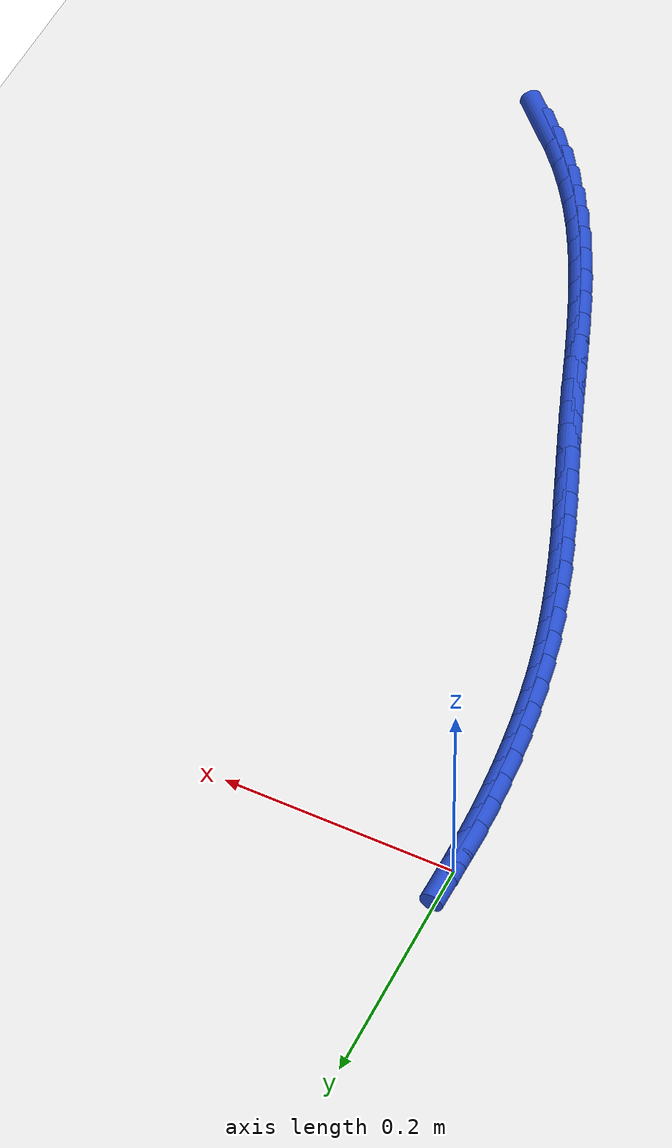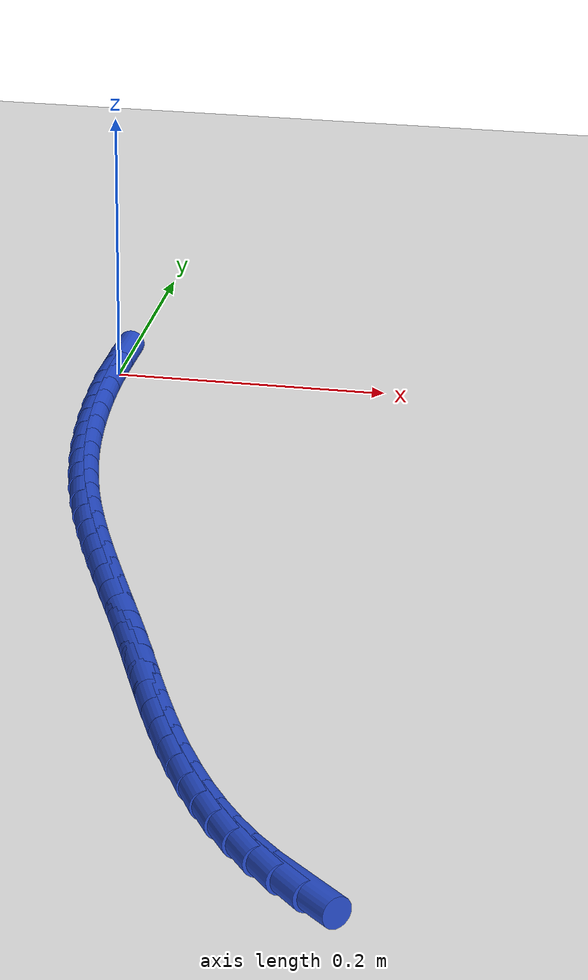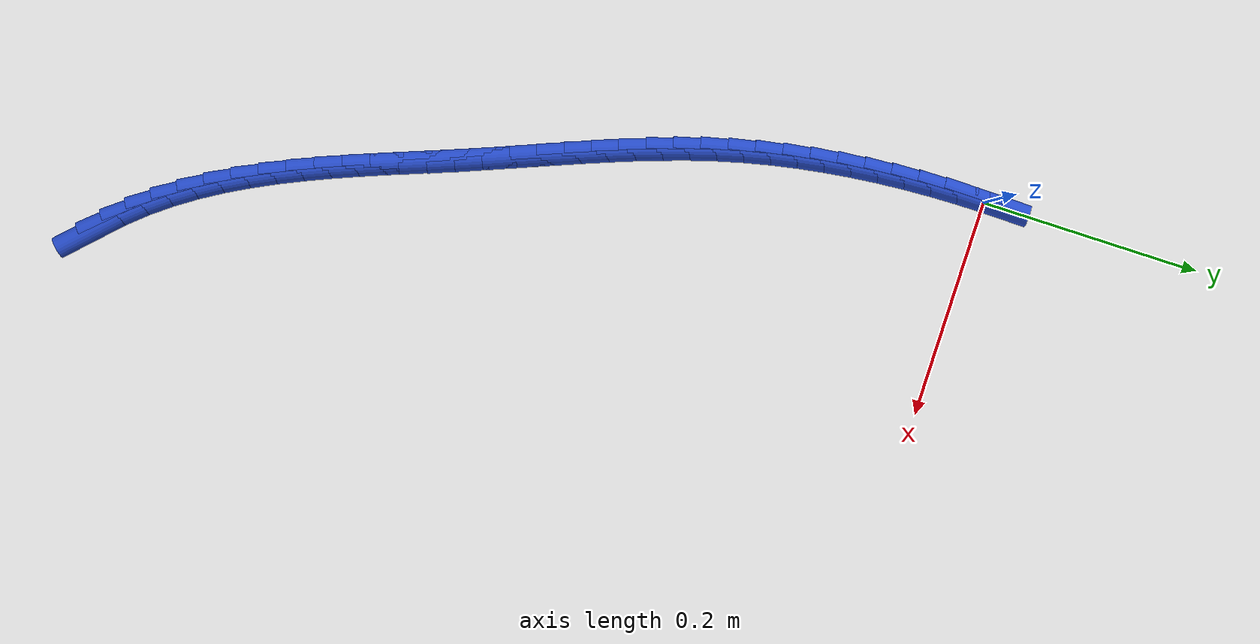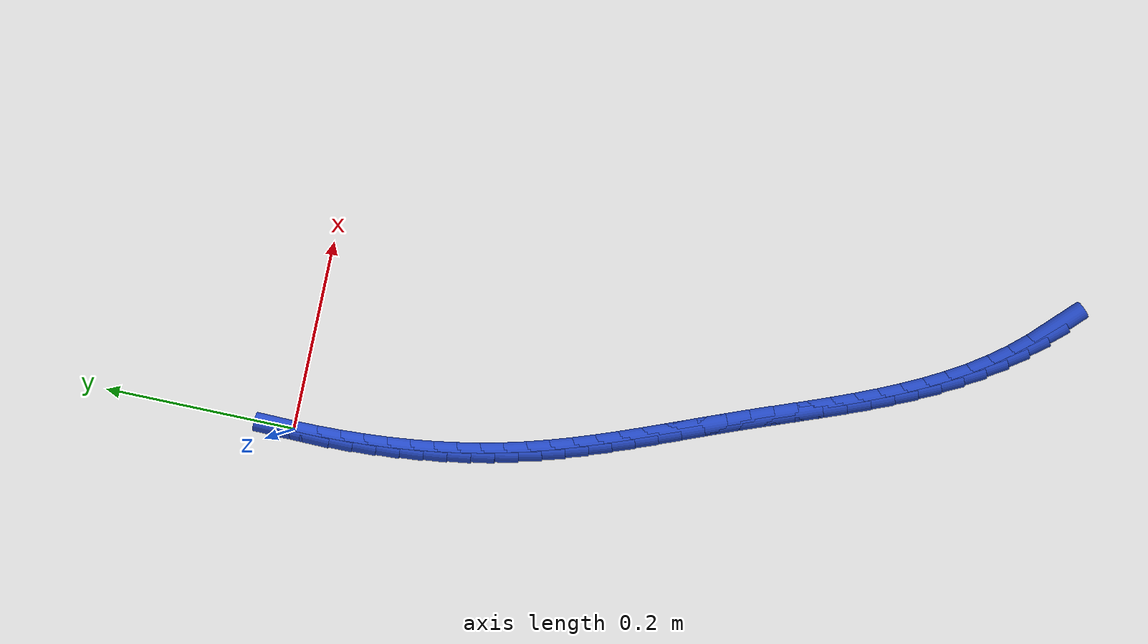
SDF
<sdf version="1.6">
 <world name="default">
  <model name="ground_plane">
   <static>1</static>
   <link name="link">
    <collision name="collision">
     <geometry><plane><normal>0 0 1</normal><size>100 100</size></plane></geometry>
     <surface><friction><ode><mu>100</mu><mu2>50</mu2></ode></friction></surface>
    </collision>
    <visual name="visual">
     <cast_shadows>0</cast_shadows>
     <geometry><plane><normal>0 0 1</normal><size>100 100</size></plane></geometry>
     <material>
      <script><uri>file://media/materials/scripts/gazebo.material</uri><name>Gazebo/WhiteGlow</name></script>
     </material>
    </visual>
   </link>
  </model>
  <model name="line">
   <link name="link_0">
    <pose>1.1709383462843448e-17 8.326672684688674e-17 0.01 0 1.57 1.5553047397902697</pose>
    <collision name="collision">
     <geometry><cylinder><radius>0.01</radius><length>0.08</length></cylinder></geometry>
    </collision>
    <visual name="visual">
     <material>
      <script><name>Gazebo/Blue</name><uri>file://media/materials/scripts/gazebo.material</uri></script>
     </material>
     <geometry><cylinder><radius>0.01</radius><length>0.08</length></cylinder></geometry>
    </visual>
   </link>
   <link name="link_237">
    <pose>0.2669774351682183 -0.7471383520197358 0.01 0 1.57 -0.7804155482801699</pose>
    <collision name="collision">
     <geometry><cylinder><radius>0.01</radius><length>0.08</length></cylinder></geometry>
    </collision>
    <visual name="visual">
     <material>
      <script><name>Gazebo/Blue</name><uri>file://media/materials/scripts/gazebo.material</uri></script>
     </material>
     <geometry><cylinder><radius>0.01</radius><length>0.08</length></cylinder></geometry>
    </visual>
   </link>
   <link name="link_238">
    <pose>0.24999599239306802 -0.7303252956205336 0.01 0 1.57 -0.8497371506162074</pose>
    <collision name="collision">
     <geometry><cylinder><radius>0.01</radius><length>0.08</length></cylinder></geometry>
    </collision>
    <visual name="visual">
     <material>
      <script><name>Gazebo/Blue</name><uri>file://media/materials/scripts/gazebo.material</uri></script>
     </material>
     <geometry><cylinder><radius>0.01</radius><length>0.08</length></cylinder></geometry>
    </visual>
   </link>
   <link name="link_239">
    <pose>0.23427046721917677 -0.7124339026118526 0.01 0 1.57 -0.9156264126686907</pose>
    <collision name="collision">
     <geometry><cylinder><radius>0.01</radius><length>0.08</length></cylinder></geometry>
    </collision>
    <visual name="visual">
     <material>
      <script><name>Gazebo/Blue</name><uri>file://media/materials/scripts/gazebo.material</uri></script>
     </material>
     <geometry><cylinder><radius>0.01</radius><length>0.08</length></cylinder></geometry>
    </visual>
   </link>
   <link name="link_240">
    <pose>0.21974109338683462 -0.6935251556354792 0.01 0 1.57 -0.9747074095713762</pose>
    <collision name="collision">
     <geometry><cylinder><radius>0.01</radius><length>0.08</length></cylinder></geometry>
    </collision>
    <visual name="visual">
     <material>
      <script><name>Gazebo/Blue</name><uri>file://media/materials/scripts/gazebo.material</uri></script>
     </material>
     <geometry><cylinder><radius>0.01</radius><length>0.08</length></cylinder></geometry>
    </visual>
   </link>
   <link name="link_241">
    <pose>0.20629307793230992 -0.6737023253712655 0.01 0 1.57 -1.0267745487455127</pose>
    <collision name="collision">
     <geometry><cylinder><radius>0.01</radius><length>0.08</length></cylinder></geometry>
    </collision>
    <visual name="visual">
     <material>
      <script><name>Gazebo/Blue</name><uri>file://media/materials/scripts/gazebo.material</uri></script>
     </material>
     <geometry><cylinder><radius>0.01</radius><length>0.08</length></cylinder></geometry>
    </visual>
   </link>
   <link name="link_242">
    <pose>0.19381159968897815 -0.65306870417299 0.01 0 1.57 -1.0718414684116215</pose>
    <collision name="collision">
     <geometry><cylinder><radius>0.01</radius><length>0.08</length></cylinder></geometry>
    </collision>
    <visual name="visual">
     <material>
      <script><name>Gazebo/Blue</name><uri>file://media/materials/scripts/gazebo.material</uri></script>
     </material>
     <geometry><cylinder><radius>0.01</radius><length>0.08</length></cylinder></geometry>
    </visual>
   </link>
   <link name="link_243">
    <pose>0.18218183749021666 -0.6317275843944349 0.01 0 1.57 -1.1100618368110649</pose>
    <collision name="collision">
     <geometry><cylinder><radius>0.01</radius><length>0.08</length></cylinder></geometry>
    </collision>
    <visual name="visual">
     <material>
      <script><name>Gazebo/Blue</name><uri>file://media/materials/scripts/gazebo.material</uri></script>
     </material>
     <geometry><cylinder><radius>0.01</radius><length>0.08</length></cylinder></geometry>
    </visual>
   </link>
   <link name="link_244">
    <pose>0.17128897016940098 -0.6097822583893788 0.01 0 1.57 -1.1416625565365328</pose>
    <collision name="collision">
     <geometry><cylinder><radius>0.01</radius><length>0.08</length></cylinder></geometry>
    </collision>
    <visual name="visual">
     <material>
      <script><name>Gazebo/Blue</name><uri>file://media/materials/scripts/gazebo.material</uri></script>
     </material>
     <geometry><cylinder><radius>0.01</radius><length>0.08</length></cylinder></geometry>
    </visual>
   </link>
   <link name="link_245">
    <pose>0.16101817655990816 -0.5873360185116033 0.01 0 1.57 -1.166891850198696</pose>
    <collision name="collision">
     <geometry><cylinder><radius>0.01</radius><length>0.08</length></cylinder></geometry>
    </collision>
    <visual name="visual">
     <material>
      <script><name>Gazebo/Blue</name><uri>file://media/materials/scripts/gazebo.material</uri></script>
     </material>
     <geometry><cylinder><radius>0.01</radius><length>0.08</length></cylinder></geometry>
    </visual>
   </link>
   <link name="link_246">
    <pose>0.15125463549511436 -0.5644921571148885 0.01 0 1.57 -1.1859817590981456</pose>
    <collision name="collision">
     <geometry><cylinder><radius>0.01</radius><length>0.08</length></cylinder></geometry>
    </collision>
    <visual name="visual">
     <material>
      <script><name>Gazebo/Blue</name><uri>file://media/materials/scripts/gazebo.material</uri></script>
     </material>
     <geometry><cylinder><radius>0.01</radius><length>0.08</length></cylinder></geometry>
    </visual>
   </link>
   <link name="link_247">
    <pose>0.1418835258083957 -0.541353966553014 0.01 0 1.57 -1.1991225440745545</pose>
    <collision name="collision">
     <geometry><cylinder><radius>0.01</radius><length>0.08</length></cylinder></geometry>
    </collision>
    <visual name="visual">
     <material>
      <script><name>Gazebo/Blue</name><uri>file://media/materials/scripts/gazebo.material</uri></script>
     </material>
     <geometry><cylinder><radius>0.01</radius><length>0.08</length></cylinder></geometry>
    </visual>
   </link>
   <link name="link_248">
    <pose>0.1327900263331291 -0.5180247391797616 0.01 0 1.57 -1.2064460215530726</pose>
    <collision name="collision">
     <geometry><cylinder><radius>0.01</radius><length>0.08</length></cylinder></geometry>
    </collision>
    <visual name="visual">
     <material>
      <script><name>Gazebo/Blue</name><uri>file://media/materials/scripts/gazebo.material</uri></script>
     </material>
     <geometry><cylinder><radius>0.01</radius><length>0.08</length></cylinder></geometry>
    </visual>
   </link>
   <link name="link_249">
    <pose>0.1238593159026904 -0.49460776734890977 0.01 0 1.57 -1.2080152499816255</pose>
    <collision name="collision">
     <geometry><cylinder><radius>0.01</radius><length>0.08</length></cylinder></geometry>
    </collision>
    <visual name="visual">
     <material>
      <script><name>Gazebo/Blue</name><uri>file://media/materials/scripts/gazebo.material</uri></script>
     </material>
     <geometry><cylinder><radius>0.01</radius><length>0.08</length></cylinder></geometry>
    </visual>
   </link>
   <link name="link_250">
    <pose>0.1149765733504566 -0.4712063434142409 0.01 0 1.57 -1.2038188091115087</pose>
    <collision name="collision">
     <geometry><cylinder><radius>0.01</radius><length>0.08</length></cylinder></geometry>
    </collision>
    <visual name="visual">
     <material>
      <script><name>Gazebo/Blue</name><uri>file://media/materials/scripts/gazebo.material</uri></script>
     </material>
     <geometry><cylinder><radius>0.01</radius><length>0.08</length></cylinder></geometry>
    </visual>
   </link>
   <link name="link_251">
    <pose>0.10602697943860252 -0.4479237583510779 0.01 0 1.57 -1.1956948619472392</pose>
    <collision name="collision">
     <geometry><cylinder><radius>0.01</radius><length>0.08</length></cylinder></geometry>
    </collision>
    <visual name="visual">
     <material>
      <script><name>Gazebo/Blue</name><uri>file://media/materials/scripts/gazebo.material</uri></script>
     </material>
     <geometry><cylinder><radius>0.01</radius><length>0.08</length></cylinder></geometry>
    </visual>
   </link>
   <link name="link_252">
    <pose>0.09693579151159203 -0.4248346615881874 0.01 0 1.57 -1.190476347139163</pose>
    <collision name="collision">
     <geometry><cylinder><radius>0.01</radius><length>0.08</length></cylinder></geometry>
    </collision>
    <visual name="visual">
     <material>
      <script><name>Gazebo/Blue</name><uri>file://media/materials/scripts/gazebo.material</uri></script>
     </material>
     <geometry><cylinder><radius>0.01</radius><length>0.08</length></cylinder></geometry>
    </visual>
   </link>
   <link name="link_253">
    <pose>0.0877714364210168 -0.4019113835473141 0.01 0 1.57 -1.189762766605556</pose>
    <collision name="collision">
     <geometry><cylinder><radius>0.01</radius><length>0.08</length></cylinder></geometry>
    </collision>
    <visual name="visual">
     <material>
      <script><name>Gazebo/Blue</name><uri>file://media/materials/scripts/gazebo.material</uri></script>
     </material>
     <geometry><cylinder><radius>0.01</radius><length>0.08</length></cylinder></geometry>
    </visual>
   </link>
   <link name="link_254">
    <pose>0.07863429848606908 -0.37910341559447946 0.01 0 1.57 -1.193619735925232</pose>
    <collision name="collision">
     <geometry><cylinder><radius>0.01</radius><length>0.08</length></cylinder></geometry>
    </collision>
    <visual name="visual">
     <material>
      <script><name>Gazebo/Blue</name><uri>file://media/materials/scripts/gazebo.material</uri></script>
     </material>
     <geometry><cylinder><radius>0.01</radius><length>0.08</length></cylinder></geometry>
    </visual>
   </link>
   <link name="link_255">
    <pose>0.06962476202593994 -0.3563602490957021 0.01 0 1.57 -1.202102706481773</pose>
    <collision name="collision">
     <geometry><cylinder><radius>0.01</radius><length>0.08</length></cylinder></geometry>
    </collision>
    <visual name="visual">
     <material>
      <script><name>Gazebo/Blue</name><uri>file://media/materials/scripts/gazebo.material</uri></script>
     </material>
     <geometry><cylinder><radius>0.01</radius><length>0.08</length></cylinder></geometry>
    </visual>
   </link>
   <link name="link_256">
    <pose>0.060843211359821625 -0.3336313754170036 0.01 0 1.57 -1.2152540202017972</pose>
    <collision name="collision">
     <geometry><cylinder><radius>0.01</radius><length>0.08</length></cylinder></geometry>
    </collision>
    <visual name="visual">
     <material>
      <script><name>Gazebo/Blue</name><uri>file://media/materials/scripts/gazebo.material</uri></script>
     </material>
     <geometry><cylinder><radius>0.01</radius><length>0.08</length></cylinder></geometry>
    </visual>
   </link>
   <link name="link_257">
    <pose>0.05239003080690548 -0.31086628592440335 0.01 0 1.57 -1.2330969220556964</pose>
    <collision name="collision">
     <geometry><cylinder><radius>0.01</radius><length>0.08</length></cylinder></geometry>
    </collision>
    <visual name="visual">
     <material>
      <script><name>Gazebo/Blue</name><uri>file://media/materials/scripts/gazebo.material</uri></script>
     </material>
     <geometry><cylinder><radius>0.01</radius><length>0.08</length></cylinder></geometry>
    </visual>
   </link>
   <link name="link_258">
    <pose>0.04436560468638291 -0.2880144719839206 0.01 0 1.57 -1.2556264900420535</pose>
    <collision name="collision">
     <geometry><cylinder><radius>0.01</radius><length>0.08</length></cylinder></geometry>
    </collision>
    <visual name="visual">
     <material>
      <script><name>Gazebo/Blue</name><uri>file://media/materials/scripts/gazebo.material</uri></script>
     </material>
     <geometry><cylinder><radius>0.01</radius><length>0.08</length></cylinder></geometry>
    </visual>
   </link>
   <link name="link_259">
    <pose>0.03687031731744609 -0.26502542496157694 0.01 0 1.57 -1.2827976946239998</pose>
    <collision name="collision">
     <geometry><cylinder><radius>0.01</radius><length>0.08</length></cylinder></geometry>
    </collision>
    <visual name="visual">
     <material>
      <script><name>Gazebo/Blue</name><uri>file://media/materials/scripts/gazebo.material</uri></script>
     </material>
     <geometry><cylinder><radius>0.01</radius><length>0.08</length></cylinder></geometry>
    </visual>
   </link>
   <link name="link_260">
    <pose>0.030004553019286208 -0.24184863622339103 0.01 0 1.57 -1.3143750596338484</pose>
    <collision name="collision">
     <geometry><cylinder><radius>0.01</radius><length>0.08</length></cylinder></geometry>
    </collision>
    <visual name="visual">
     <material>
      <script><name>Gazebo/Blue</name><uri>file://media/materials/scripts/gazebo.material</uri></script>
     </material>
     <geometry><cylinder><radius>0.01</radius><length>0.08</length></cylinder></geometry>
    </visual>
   </link>
   <link name="link_261">
    <pose>0.02386577176570875 -0.21843543658197628 0.01 0 1.57 -1.3473665932114194</pose>
    <collision name="collision">
     <geometry><cylinder><radius>0.01</radius><length>0.08</length></cylinder></geometry>
    </collision>
    <visual name="visual">
     <material>
      <script><name>Gazebo/Blue</name><uri>file://media/materials/scripts/gazebo.material</uri></script>
     </material>
     <geometry><cylinder><radius>0.01</radius><length>0.08</length></cylinder></geometry>
    </visual>
   </link>
   <link name="link_262">
    <pose>0.018489779158312965 -0.19477593815305275 0.01 0 1.57 -1.379030916763799</pose>
    <collision name="collision">
     <geometry><cylinder><radius>0.01</radius><length>0.08</length></cylinder></geometry>
    </collision>
    <visual name="visual">
     <material>
      <script><name>Gazebo/Blue</name><uri>file://media/materials/scripts/gazebo.material</uri></script>
     </material>
     <geometry><cylinder><radius>0.01</radius><length>0.08</length></cylinder></geometry>
    </visual>
   </link>
   <link name="link_263">
    <pose>0.013853688634820836 -0.170897171092639 0.01 0 1.57 -1.4092953698336395</pose>
    <collision name="collision">
     <geometry><cylinder><radius>0.01</radius><length>0.08</length></cylinder></geometry>
    </collision>
    <visual name="visual">
     <material>
      <script><name>Gazebo/Blue</name><uri>file://media/materials/scripts/gazebo.material</uri></script>
     </material>
     <geometry><cylinder><radius>0.01</radius><length>0.08</length></cylinder></geometry>
    </visual>
   </link>
   <link name="link_264">
    <pose>0.009932282179521692 -0.14682763206754318 0.01 0 1.57 -1.4382029570368422</pose>
    <collision name="collision">
     <geometry><cylinder><radius>0.01</radius><length>0.08</length></cylinder></geometry>
    </collision>
    <visual name="visual">
     <material>
      <script><name>Gazebo/Blue</name><uri>file://media/materials/scripts/gazebo.material</uri></script>
     </material>
     <geometry><cylinder><radius>0.01</radius><length>0.08</length></cylinder></geometry>
    </visual>
   </link>
   <link name="link_265">
    <pose>0.0067003417767053635 -0.12259581774457638 0.01 0 1.57 -1.4658019533256055</pose>
    <collision name="collision">
     <geometry><cylinder><radius>0.01</radius><length>0.08</length></cylinder></geometry>
    </collision>
    <visual name="visual">
     <material>
      <script><name>Gazebo/Blue</name><uri>file://media/materials/scripts/gazebo.material</uri></script>
     </material>
     <geometry><cylinder><radius>0.01</radius><length>0.08</length></cylinder></geometry>
    </visual>
   </link>
   <link name="link_266">
    <pose>0.004132649410661254 -0.0982302247905467 0.01 0 1.57 -1.4921443080786283</pose>
    <collision name="collision">
     <geometry><cylinder><radius>0.01</radius><length>0.08</length></cylinder></geometry>
    </collision>
    <visual name="visual">
     <material>
      <script><name>Gazebo/Blue</name><uri>file://media/materials/scripts/gazebo.material</uri></script>
     </material>
     <geometry><cylinder><radius>0.01</radius><length>0.08</length></cylinder></geometry>
    </visual>
   </link>
   <link name="link_267">
    <pose>0.002203987065679116 -0.07375934987226511 0.01 0 1.57 -1.5172842996792695</pose>
    <collision name="collision">
     <geometry><cylinder><radius>0.01</radius><length>0.08</length></cylinder></geometry>
    </collision>
    <visual name="visual">
     <material>
      <script><name>Gazebo/Blue</name><uri>file://media/materials/scripts/gazebo.material</uri></script>
     </material>
     <geometry><cylinder><radius>0.01</radius><length>0.08</length></cylinder></geometry>
    </visual>
   </link>
   <link name="link_268">
    <pose>0.0008891367260484622 -0.04921168965654053 0.01 0 1.57 -1.5412774252331503</pose>
    <collision name="collision">
     <geometry><cylinder><radius>0.01</radius><length>0.08</length></cylinder></geometry>
    </collision>
    <visual name="visual">
     <material>
      <script><name>Gazebo/Blue</name><uri>file://media/materials/scripts/gazebo.material</uri></script>
     </material>
     <geometry><cylinder><radius>0.01</radius><length>0.08</length></cylinder></geometry>
    </visual>
   </link>
   <link name="link_269">
    <pose>0.00016288037605888045 -0.02461574081018175 0.01 0 1.57 -1.5641795038354365</pose>
    <collision name="collision">
     <geometry><cylinder><radius>0.01</radius><length>0.08</length></cylinder></geometry>
    </collision>
    <visual name="visual">
     <material>
      <script><name>Gazebo/Blue</name><uri>file://media/materials/scripts/gazebo.material</uri></script>
     </material>
     <geometry><cylinder><radius>0.01</radius><length>0.08</length></cylinder></geometry>
    </visual>
   </link>
  </model>
 </world>
</sdf>
